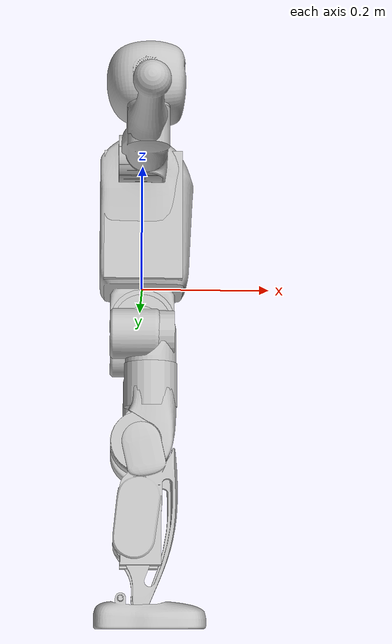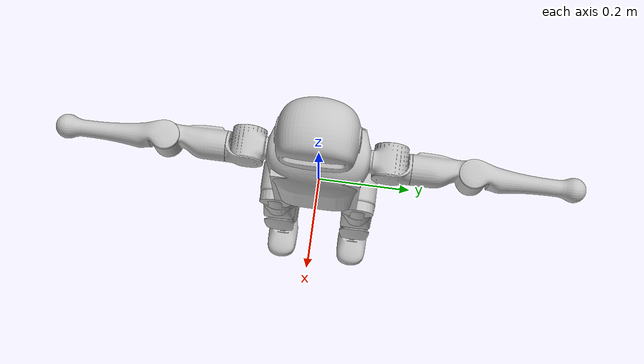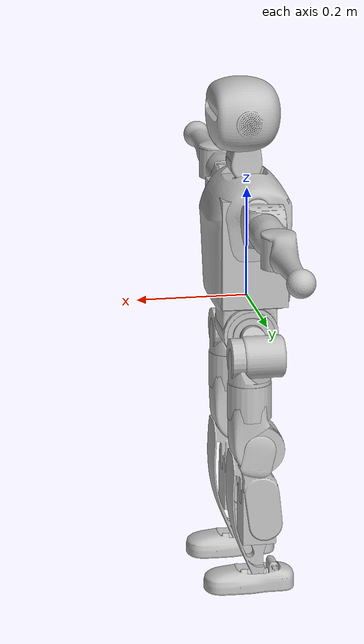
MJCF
<mujoco model="K1">
  <compiler angle="radian" meshdir="meshes/" autolimits="true"/>
  <option timestep="0.002" integrator="RK4" />

  <asset>
    <mesh name="Trunk" file="Trunk.STL"/>
    <mesh name="Head_1" file="Head_1.STL"/>
    <mesh name="Head_2" file="Head_2.STL"/>
    <mesh name="Left_Arm_1" file="Left_Arm_1.STL"/>
    <mesh name="Left_Arm_2" file="Left_Arm_2.STL"/>
    <mesh name="Left_Arm_3" file="Left_Arm_3.STL"/>
    <mesh name="Left_Arm_4" file="Left_Arm_4.STL"/>
    <mesh name="Right_Arm_1" file="Right_Arm_1.STL"/>
    <mesh name="Right_Arm_2" file="Right_Arm_2.STL"/>
    <mesh name="Right_Arm_3" file="Right_Arm_3.STL"/>
    <mesh name="Right_Arm_4" file="Right_Arm_4.STL"/>
    <mesh name="Left_Hip_Pitch" file="Left_Hip_Pitch.STL"/>
    <mesh name="Left_Hip_Roll" file="Left_Hip_Roll.STL"/>
    <mesh name="Left_Hip_Yaw" file="Left_Hip_Yaw.STL"/>
    <mesh name="Left_Shank" file="Left_Shank.STL"/>
    <mesh name="Left_Ankle_Cross" file="Left_Ankle_Cross.STL"/>
    <mesh name="Left_Foot" file="Left_Foot.STL"/>
    <mesh name="Right_Hip_Pitch" file="Right_Hip_Pitch.STL"/>
    <mesh name="Right_Hip_Roll" file="Right_Hip_Roll.STL"/>
    <mesh name="Right_Hip_Yaw" file="Right_Hip_Yaw.STL"/>
    <mesh name="Right_Shank" file="Right_Shank.STL"/>
    <mesh name="Right_Ankle_Cross" file="Right_Ankle_Cross.STL"/>
    <mesh name="Right_Foot" file="Right_Foot.STL"/>
  </asset>

  <worldbody>

    <body name="Trunk">
      <site name='imu' size='0.01' pos='0.0 0.0 0.0' />
      <inertial pos="-0.0043392 -0.00065534 0.065686" quat="0.999896 -0.00411546 0.0137413 -0.00168959" mass="6.3921" diaginertia="0.0962166 0.0895166 0.0201248"/>
      <joint name="world_joint" type="free" limited="false" actuatorfrclimited="false"/>
      <geom type="mesh" contype="0" conaffinity="0" group="1" density="0" rgba="0.75294 0.75294 0.75294 1" mesh="Trunk"/>
      <geom size="0.06 0.09 0.1" pos="0 0 0.1" type="box" rgba="0.75294 0.75294 0.75294 1"/>
      <geom size="0.05 0.05" pos="0 0 -0.06" quat="0.707105 0.707108 0 0" type="cylinder" rgba="0.75294 0.75294 0.75294 1"/>
      <body name="Head_1" pos="0.0056 0 0.2149">
        <inertial pos="-0.00069503 -0.00038527 0.031688" quat="0.993827 -0.00957801 0.00894723 -0.110168" mass="0.29729" diaginertia="0.000429546 0.000420659 0.000125795"/>
        <joint name="Head_yaw" pos="0 0 0" axis="0 0 1" range="-1 1" armature="0.002"/>
        <geom type="mesh" contype="0" conaffinity="0" group="1" density="0" rgba="0.75294 0.75294 0.75294 1" mesh="Head_1"/>
        <geom type="mesh" rgba="0.75294 0.75294 0.75294 1" mesh="Head_1"/>
        <body name="Head_2" pos="0 0 0.033">
          <inertial pos="0.011042 -0.00092871 0.080698" quat="0.996402 -0.00118413 -0.0779414 -0.0332651" mass="0.61387" diaginertia="0.00603249 0.00577511 0.0017024"/>
          <joint name="Head_pitch" pos="0 0 0" axis="0 1 0" range="-0.349 0.855" armature="0.002"/>
          <geom type="mesh" contype="0" conaffinity="0" group="1" density="0" rgba="0.75294 0.75294 0.75294 1" mesh="Head_2"/>
          <geom type="mesh" rgba="0.75294 0.75294 0.75294 1" mesh="Head_2"/>
        </body>
      </body>
      <body name="Left_Arm_1" pos="0 0.077 0.1845">
        <inertial pos="-0.002701 0.062383 -0.011965" quat="0.578658 0.689818 -0.347436 0.261905" mass="0.45628" diaginertia="0.00223871 0.00217107 0.000254225"/>
        <joint name="Left_Shoulder_Pitch" pos="0 0 0" axis="0 1 0" range="-3.316 1.22" armature="0.03"/>
        <geom type="mesh" contype="0" conaffinity="0" group="1" density="0" rgba="0.75294 0.75294 0.75294 1" mesh="Left_Arm_1"/>
        <body name="Left_Arm_2" pos="0.0025 0.068 -0.0135">
          <inertial pos="0.01729 0.018221 -4.329e-05" quat="0.413453 0.573635 -0.413453 0.573635" mass="0.084303" diaginertia="0.000113 9.5e-05 6.5e-05"/>
          <joint name="Left_Shoulder_Roll" pos="0 0 0" axis="1 0 0" range="-1.74 1.57" armature="0.03"/>
          <geom type="mesh" contype="0" conaffinity="0" group="1" density="0" rgba="0.75294 0.75294 0.75294 1" mesh="Left_Arm_2"/>
          <geom size="0.035 0.034" pos="-0.007 0 0" quat="0.707105 0 0.707108 0" type="cylinder" rgba="0.75294 0.75294 0.75294 1"/>
          <body name="Left_Arm_3" pos="0 0.044428 0">
            <inertial pos="-0.0003979 0.072617 -0.00066218" quat="0.679502 0.689551 0.177403 -0.176989" mass="0.76208" diaginertia="0.00606947 0.00606767 0.000385851"/>
            <joint name="Left_Elbow_Pitch" pos="0 0 0" axis="0 1 0" range="-2.27 2.27" armature="0.03"/>
            <geom type="mesh" contype="0" conaffinity="0" group="1" density="0" rgba="0.75294 0.75294 0.75294 1" mesh="Left_Arm_3"/>
            <geom type="mesh" rgba="0.75294 0.75294 0.75294 1" mesh="Left_Arm_3"/>
            <body name="left_hand_link" pos="0 0.1215 0">
              <inertial pos="-0.0015751 0.084637 0.0087033" quat="0.712106 0.700961 0.0264125 -0.0293496" mass="0.16796" diaginertia="0.00205619 0.00202933 8.1482e-05"/>
              <joint name="Left_Elbow_Yaw" pos="0 0 0" axis="0 0 1" range="-2.44 0" armature="0.03"/>
              <geom type="mesh" contype="0" conaffinity="0" group="1" density="0" rgba="0.75294 0.75294 0.75294 1" mesh="Left_Arm_4"/>
              <geom type="mesh" rgba="0.75294 0.75294 0.75294 1" mesh="Left_Arm_4"/>
            </body>
          </body>
        </body>
      </body>
      <body name="Right_Arm_1" pos="0 -0.077 0.1845">
        <inertial pos="-0.0026302 -0.06251 -0.01199" quat="0.689302 0.577958 -0.263425 0.348475" mass="0.45669" diaginertia="0.00224439 0.00217742 0.000255199"/>
        <joint name="Right_Shoulder_Pitch" pos="0 0 0" axis="0 1 0" range="-3.316 1.22" armature="0.03"/>
        <geom type="mesh" contype="0" conaffinity="0" group="1" density="0" rgba="0.75294 0.75294 0.75294 1" mesh="Right_Arm_1"/>
        <body name="Right_Arm_2" pos="0.0025 -0.068 -0.0135">
          <inertial pos="0.017229 -0.018428 4.3784e-05" quat="0.573635 0.413453 -0.573635 0.413453" mass="0.083353" diaginertia="0.000113 9.5e-05 6.5e-05"/>
          <joint name="Right_Shoulder_Roll" pos="0 0 0" axis="1 0 0" range="-1.57 1.74" armature="0.03"/>
          <geom type="mesh" contype="0" conaffinity="0" group="1" density="0" rgba="0.75294 0.75294 0.75294 1" mesh="Right_Arm_2"/>
          <geom size="0.035 0.034" pos="-0.007 0 0" quat="0.707105 0 0.707108 0" type="cylinder" rgba="0.75294 0.75294 0.75294 1"/>
          <body name="Right_Arm_3" pos="0 -0.044428 0">
            <inertial pos="-0.00039919 -0.072601 -0.00065629" quat="0.689551 0.679502 0.176989 -0.177403" mass="0.76234" diaginertia="0.00607047 0.00606867 0.000386851"/>
            <joint name="Right_Elbow_Pitch" pos="0 0 0" axis="0 1 0" range="-2.27 2.27" armature="0.03"/>
            <geom type="mesh" contype="0" conaffinity="0" group="1" density="0" rgba="0.75294 0.75294 0.75294 1" mesh="Right_Arm_3"/>
            <geom type="mesh" rgba="0.75294 0.75294 0.75294 1" mesh="Right_Arm_3"/>
            <body name="right_hand_link" pos="0 -0.1215 0">
              <inertial pos="-0.0015177 -0.084536 0.0086733" quat="0.700925 0.712091 0.0296562 -0.0274245" mass="0.16828" diaginertia="0.00205618 0.00203032 8.14943e-05"/>
              <joint name="Right_Elbow_Yaw" pos="0 0 0" axis="0 0 1" range="0 2.44" armature="0.03"/>
              <geom type="mesh" contype="0" conaffinity="0" group="1" density="0" rgba="0.75294 0.75294 0.75294 1" mesh="Right_Arm_4"/>
              <geom type="mesh" rgba="0.75294 0.75294 0.75294 1" mesh="Right_Arm_4"/>
            </body>
          </body>
        </body>
      </body>
      <body name="Left_Hip_Pitch" pos="0 0.096 -0.062">
        <inertial pos="-0.010093 -0.0019934 -0.024713" quat="0.704206 -0.178798 -0.198986 0.65767" mass="0.64068" diaginertia="0.000987585 0.000880963 0.000503452"/>
        <joint name="Left_Hip_Pitch" pos="0 0 0" axis="0 1 0" range="-3 2.21" armature="0.0478125"/>
        <geom type="mesh" contype="0" conaffinity="0" group="1" density="0" rgba="0.75294 0.75294 0.75294 1" mesh="Left_Hip_Pitch"/>
        <body name="Left_Hip_Roll" pos="0 0 -0.026">
          <inertial pos="0.023585 4.9e-05 -0.024996" quat="0.677218 0.203412 0.203412 0.677218" mass="0.127825" diaginertia="0.000262 0.000222694 0.000118306"/>
          <joint name="Left_Hip_Roll" pos="0 0 0" axis="1 0 0" range="-0.4 1.57" armature="0.0339552"/>
          <geom type="mesh" contype="0" conaffinity="0" group="1" density="0" rgba="0.75294 0.75294 0.75294 1" mesh="Left_Hip_Roll"/>
          <geom size="0.036 0.047" quat="0.707105 0 0.707108 0" type="cylinder" rgba="0.75294 0.75294 0.75294 1"/>
          <body name="Left_Hip_Yaw" pos="0.012 0 -0.0485">
            <inertial pos="-0.0084744 -0.0040494 -0.087906" quat="0.857995 -0.00590801 -0.0582713 0.510308" mass="1.5591" diaginertia="0.0162716 0.0158564 0.00134895"/>
            <joint name="Left_Hip_Yaw" pos="0 0 0" axis="0 0 1" range="-1 1" armature="0.0282528"/>
            <geom type="mesh" contype="0" conaffinity="0" group="1" density="0" rgba="0.75294 0.75294 0.75294 1" mesh="Left_Hip_Yaw"/>
            <geom size="0.04 0.033" pos="0 0 -0.03" type="cylinder" rgba="0.75294 0.75294 0.75294 1"/>
            <body name="Left_Shank" pos="-0.014 0 -0.117">
              <inertial pos="-0.00081083 0.0031459 -0.10922" quat="0.940563 -0.00388906 -0.00385774 0.339574" mass="1.48333" diaginertia="0.0237114 0.0236423 0.00123731"/>
              <joint name="Left_Knee_Pitch" pos="0 0 0" axis="0 1 0" range="0 2.23" armature="0.0478125"/>
              <geom type="mesh" contype="0" conaffinity="0" group="1" density="0" rgba="0.75294 0.75294 0.75294 1" mesh="Left_Shank"/>
              <geom size="0.045 0.035" quat="0.707105 0.707108 0 0" type="cylinder" rgba="0.75294 0.75294 0.75294 1"/>
              <geom size="0.03 0.03 0.05" pos="0 0 -0.13" type="box" rgba="0.75294 0.75294 0.75294 1"/>
              <body name="Left_Ankle_Cross" pos="0.00019706 0.0002 -0.24519">
                <inertial pos="0 0 0" quat="0.5 0.5 0.5 0.5" mass="0.038836" diaginertia="4e-06 4e-06 2e-06"/>
                <joint name="Left_Ankle_Pitch" pos="0 0 0" axis="0 1 0" range="-0.87 0.345" armature="0.0282528"/>
                <geom type="mesh" contype="0" conaffinity="0" group="1" density="0" rgba="0.75294 0.75294 0.75294 1" mesh="Left_Ankle_Cross"/>
                <body name="left_foot_link">
                  <inertial pos="7.3589e-05 -4.1141e-06 -0.0075032" quat="0 0.674609 0 0.738175" mass="0.38305" diaginertia="0.000789779 0.000741 0.000197221"/>
                  <joint name="Left_Ankle_Roll" pos="0 0 0" axis="1 0 0" range="-0.345 0.345" armature="0.0282528"/>
                  <geom type="mesh" contype="0" conaffinity="0" group="1" density="0" rgba="0.75294 0.75294 0.75294 1" mesh="Left_Foot"/>
                  <geom type="mesh" rgba="0.75294 0.75294 0.75294 1" mesh="Left_Foot"/>
                </body>
              </body>
            </body>
          </body>
        </body>
      </body>
      <body name="Right_Hip_Pitch" pos="0 -0.096 -0.062">
        <inertial pos="-0.010065 0.0020086 -0.024739" quat="0.656712 -0.199052 -0.176963 0.705544" mass="0.6413" diaginertia="0.000988671 0.000880749 0.00050458"/>
        <joint name="Right_Hip_Pitch" pos="0 0 0" axis="0 1 0" range="-3 2.21" armature="0.0478125"/>
        <geom type="mesh" contype="0" conaffinity="0" group="1" density="0" rgba="0.75294 0.75294 0.75294 1" mesh="Right_Hip_Pitch"/>
        <body name="Right_Hip_Roll" pos="0 0 -0.026">
          <inertial pos="0.023585 4.9e-05 -0.024996" quat="0.677218 0.203412 0.203412 0.677218" mass="0.127825" diaginertia="0.000262 0.000222694 0.000118306"/>
          <joint name="Right_Hip_Roll" pos="0 0 0" axis="1 0 0" range="-1.57 0.4" armature="0.0339552"/>
          <geom type="mesh" contype="0" conaffinity="0" group="1" density="0" rgba="0.75294 0.75294 0.75294 1" mesh="Right_Hip_Roll"/>
          <geom size="0.036 0.047" quat="0.707105 0 0.707108 0" type="cylinder" rgba="0.75294 0.75294 0.75294 1"/>
          <body name="Right_Hip_Yaw" pos="0.012 0 -0.0485">
            <inertial pos="-0.008475 0.0040392 -0.087906" quat="0.510308 -0.0582713 -0.00590801 0.857995" mass="1.5592" diaginertia="0.0162716 0.0158564 0.00134895"/>
            <joint name="Right_Hip_Yaw" pos="0 0 0" axis="0 0 1" range="-1 1" armature="0.0282528"/>
            <geom type="mesh" contype="0" conaffinity="0" group="1" density="0" rgba="0.75294 0.75294 0.75294 1" mesh="Right_Hip_Yaw"/>
            <geom size="0.04 0.033" pos="0 0 -0.03" type="cylinder" rgba="0.75294 0.75294 0.75294 1"/>
            <body name="Right_Shank" pos="-0.014 0 -0.117">
              <inertial pos="-0.000805 -0.003146 -0.109215" quat="0.940537 0.00388176 -0.00383651 -0.339646" mass="1.48334" diaginertia="0.0237114 0.0236423 0.00123733"/>
              <joint name="Right_Knee_Pitch" pos="0 0 0" axis="0 1 0" range="0 2.23" armature="0.0478125"/>
              <geom type="mesh" contype="0" conaffinity="0" group="1" density="0" rgba="0.75294 0.75294 0.75294 1" mesh="Right_Shank"/>
              <geom size="0.045 0.035" quat="0.707105 0.707108 0 0" type="cylinder" rgba="0.75294 0.75294 0.75294 1"/>
              <geom size="0.03 0.03 0.05" pos="0 0 -0.13" type="box" rgba="0.75294 0.75294 0.75294 1"/>
              <body name="Right_Ankle_Cross" pos="0.00019706 -0.0002 -0.24519">
                <inertial pos="0 0 0" quat="0.5 0.5 0.5 0.5" mass="0.038836" diaginertia="4e-06 4e-06 2e-06"/>
                <joint name="Right_Ankle_Pitch" pos="0 0 0" axis="0 1 0" range="-0.87 0.345" armature="0.0282528"/>
                <geom type="mesh" contype="0" conaffinity="0" group="1" density="0" rgba="0.75294 0.75294 0.75294 1" mesh="Right_Ankle_Cross"/>
                <body name="right_foot_link">
                  <inertial pos="-0.000178 -2e-06 -0.007291" quat="0 0.674109 0 0.738632" mass="0.38637" diaginertia="0.000794943 0.000745 0.000200057"/>
                  <joint name="Right_Ankle_Roll" pos="0 0 0" axis="1 0 0" range="-0.345 0.345" armature="0.0282528"/>
                  <geom type="mesh" contype="0" conaffinity="0" group="1" density="0" rgba="0.75294 0.75294 0.75294 1" mesh="Right_Foot"/>
                  <geom type="mesh" rgba="0.75294 0.75294 0.75294 1" mesh="Right_Foot"/>
                </body>
              </body>
            </body>
          </body>
        </body>
      </body>
    </body>
  </worldbody>
  <actuator>
    <position name="Head_yaw" joint="Head_yaw" forcelimited="true" forcerange="-7.0 7.0" kp="20.0" kv="2.0" />
    <position name="Head_pitch" joint="Head_pitch" forcelimited="true" forcerange="-7.0 7.0" kp="20.0" kv="2.0" />

    <position name="Left_Shoulder_Pitch" joint="Left_Shoulder_Pitch" forcelimited="true" forcerange="-10.0 10.0" kp="20.0" kv="2.0" />
    <position name="Left_Shoulder_Roll" joint="Left_Shoulder_Roll" forcelimited="true" forcerange="-10.0 10.0" kp="20.0" kv="2.0" />
    <position name="Left_Elbow_Pitch" joint="Left_Elbow_Pitch" forcelimited="true" forcerange="-10.0 10.0" kp="20.0" kv="2.0" />
    <position name="Left_Elbow_Yaw" joint="Left_Elbow_Yaw" forcelimited="true" forcerange="-10.0 10.0" kp="20.0" kv="2.0" />

    <position name="Right_Shoulder_Pitch" joint="Right_Shoulder_Pitch" forcelimited="true" forcerange="-10.0 10.0" kp="20.0" kv="2.0" />
    <position name="Right_Shoulder_Roll" joint="Right_Shoulder_Roll" forcelimited="true" forcerange="-10.0 10.0" kp="20.0" kv="2.0" />
    <position name="Right_Elbow_Pitch" joint="Right_Elbow_Pitch" forcelimited="true" forcerange="-10.0 10.0" kp="20.0" kv="2.0" />
    <position name="Right_Elbow_Yaw" joint="Right_Elbow_Yaw" forcelimited="true" forcerange="-10.0 10.0" kp="20.0" kv="2.0" />

    <position name="Left_Hip_Pitch" joint="Left_Hip_Pitch" forcelimited="true" forcerange="-40.0 40.0" kp="100.0" kv="2.0" />
    <position name="Left_Hip_Roll" joint="Left_Hip_Roll" forcelimited="true" forcerange="-50.0 50.0" kp="100.0" kv="2.0" />
    <position name="Left_Hip_Yaw" joint="Left_Hip_Yaw" forcelimited="true" forcerange="-36.0 36.0" kp="100.0" kv="2.0" />
    <position name="Left_Knee_Pitch" joint="Left_Knee_Pitch" forcelimited="true" forcerange="-56.0 56.0" kp="100.0" kv="2.0" />
    <position name="Left_Ankle_Pitch" joint="Left_Ankle_Pitch" forcelimited="true" forcerange="-25.0 25.0" kp="50.0" kv="1.0" />
    <position name="Left_Ankle_Roll" joint="Left_Ankle_Roll" forcelimited="true" forcerange="-25.0 25.0" kp="50.0" kv="1.0" />

    <position name="Right_Hip_Pitch" joint="Right_Hip_Pitch" forcelimited="true" forcerange="-40.0 40.0" kp="100.0" kv="2.0" />
    <position name="Right_Hip_Roll" joint="Right_Hip_Roll" forcelimited="true" forcerange="-50.0 50.0" kp="100.0" kv="2.0" />
    <position name="Right_Hip_Yaw" joint="Right_Hip_Yaw" forcelimited="true" forcerange="-36.0 36.0" kp="100.0" kv="2.0" />
    <position name="Right_Knee_Pitch" joint="Right_Knee_Pitch" forcelimited="true" forcerange="-56.0 56.0" kp="100.0" kv="2.0" />
    <position name="Right_Ankle_Pitch" joint="Right_Ankle_Pitch" forcelimited="true" forcerange="-25.0 25.0" kp="50.0" kv="1.0" />
    <position name="Right_Ankle_Roll" joint="Right_Ankle_Roll" forcelimited="true" forcerange="-25.0 25.0" kp="50.0" kv="1.0" />
  </actuator>
  <sensor>
    <framequat name="orientation" objtype="site" noise="0.001" objname="imu" />
    <gyro name="angular-velocity" site="imu" noise="0.005" />
    <velocimeter name="velocity" site="imu" noise="0.005" />
  </sensor>

  <keyframe>
    <key name="home"
      qpos="
        0 0 0.6
        1 0 0 0
        0.0 0.0
        0.2 -1.35 0 -0.5
        0.2  1.35 0  0.5
        -0.15 0 0 0.3 -0.15 0.
        -0.15 0 0 0.3 -0.15 0."
      ctrl="
        0 0
        0 0 0 0
        0 0 0 0
        0 0 0 0 0 0
        0 0 0 0 0 0"
    />
  </keyframe>

</mujoco>
